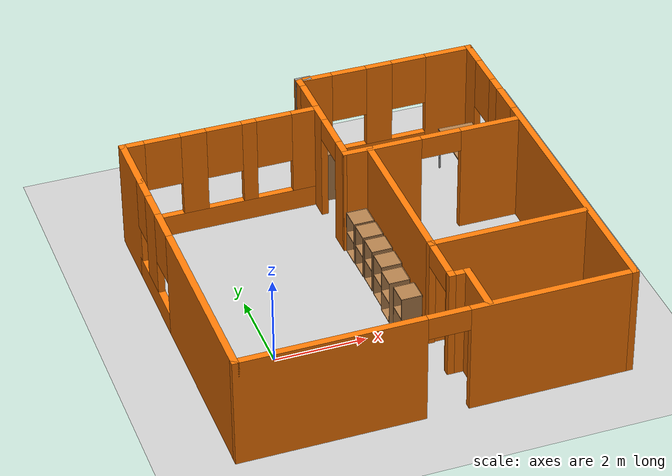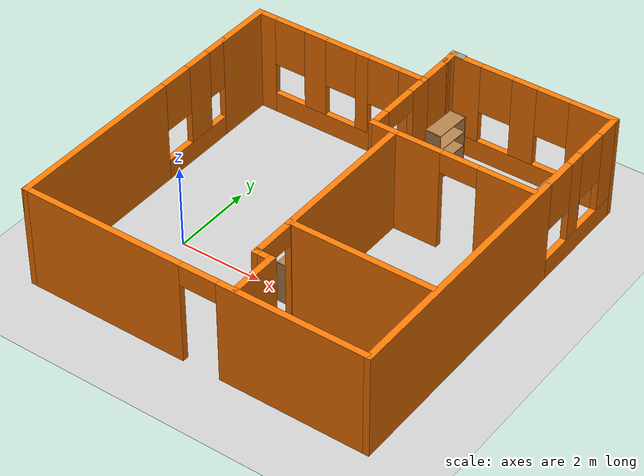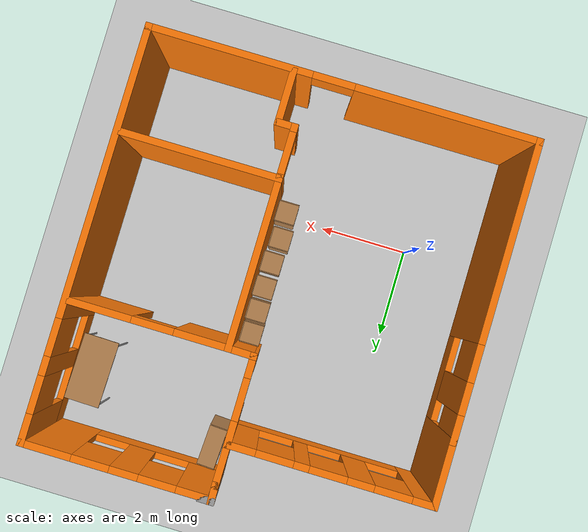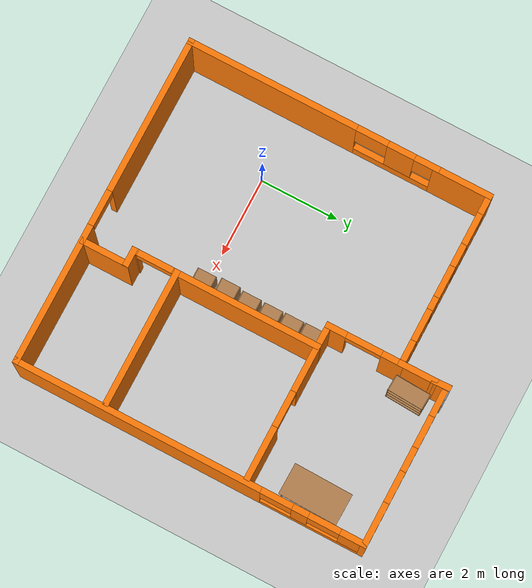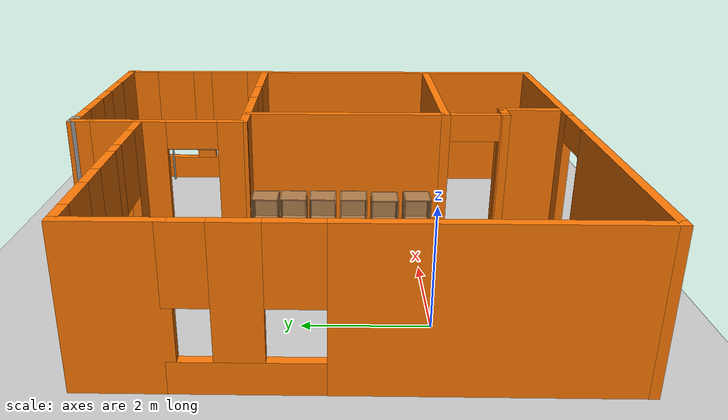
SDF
<sdf version="1.6">
 <world name="default">
  <plugin name="hello" filename="libWorldPluginProject_1.so"/>
  <light name="sun" type="directional">
   <pose>0 0 10 0 -0 0</pose>
   <diffuse>0.8 0.8 0.8 1</diffuse>
   <specular>0.2 0.2 0.2 1</specular>
   <attenuation>
    <range>1000</range>
    <constant>0.9</constant>
    <linear>0.01</linear>
    <quadratic>0.001</quadratic>
   </attenuation>
   <direction>-0.5 0.1 -0.9</direction>
  </light>
  <model name="ground_plane">
   <static>1</static>
   <link name="link">
    <collision name="collision">
     <geometry><plane><normal>0 0 1</normal><size>100 100</size></plane></geometry>
     <surface><friction><ode><mu>100</mu><mu2>50</mu2></ode></friction></surface>
    </collision>
    <visual name="visual">
     <cast_shadows>0</cast_shadows>
     <geometry><plane><normal>0 0 1</normal><size>100 100</size></plane></geometry>
     <material>
      <script><uri>file://media/materials/scripts/gazebo.material</uri><name>Gazebo/Grey</name></script>
     </material>
    </visual>
   </link>
  </model>
  <gravity>0 0 -9.8</gravity>
  <magnetic_field>6e-06 2.3e-05 -4.2e-05</magnetic_field>
  <atmosphere type="adiabatic"/>
  <physics name="default_physics" default="0" type="ode">
   <max_step_size>0.001</max_step_size>
   <real_time_factor>1</real_time_factor>
   <real_time_update_rate>1000</real_time_update_rate>
  </physics>
  <scene><ambient>0.4 0.4 0.4 1</ambient><background>0.7 0.7 0.7 1</background><shadows>1</shadows></scene>
  <spherical_coordinates>
   <surface_model>EARTH_WGS84</surface_model>
   <latitude_deg>0</latitude_deg>
   <longitude_deg>0</longitude_deg>
   <elevation>0</elevation>
   <heading_deg>0</heading_deg>
  </spherical_coordinates>
  <model name="MyHouse">
   <pose>2.505 1.70073 0 0 -0 0</pose>
   <link name="Wall_0">
    <pose>0 -4.44072 0 0 -0 0</pose>
    <visual name="Wall_0_Visual_0">
     <pose>-2.24582 0 1.25 0 -0 0</pose>
     <geometry><box><size>4.00836 0.15 2.5</size></box></geometry>
     <material>
      <script><uri>file://media/materials/scripts/gazebo.material</uri><name>Gazebo/Grey</name></script>
      <ambient>0.996078 0.47451 0.0196078 1</ambient>
     </material>
     <meta><layer>0</layer></meta>
    </visual>
    <collision name="Wall_0_Collision_0">
     <geometry><box><size>4.00836 0.15 2.5</size></box></geometry>
     <pose>-2.24582 0 1.25 0 -0 0</pose>
    </collision>
    <visual name="Wall_0_Visual_1">
     <pose>2.45418 0 1.25 0 -0 0</pose>
     <geometry><box><size>3.59164 0.15 2.5</size></box></geometry>
     <material>
      <script><uri>file://media/materials/scripts/gazebo.material</uri><name>Gazebo/Grey</name></script>
      <ambient>0.996078 0.47451 0.0196078 1</ambient>
     </material>
     <meta><layer>0</layer></meta>
    </visual>
    <collision name="Wall_0_Collision_1">
     <geometry><box><size>3.59164 0.15 2.5</size></box></geometry>
     <pose>2.45418 0 1.25 0 -0 0</pose>
    </collision>
    <visual name="Wall_0_Visual_2">
     <pose>0.208358 0 2.25 0 -0 0</pose>
     <geometry><box><size>0.9 0.15 0.5</size></box></geometry>
     <material>
      <script><uri>file://media/materials/scripts/gazebo.material</uri><name>Gazebo/Grey</name></script>
      <ambient>0.996078 0.47451 0.0196078 1</ambient>
     </material>
     <meta><layer>0</layer></meta>
    </visual>
    <collision name="Wall_0_Collision_2">
     <geometry><box><size>0.9 0.15 0.5</size></box></geometry>
     <pose>0.208358 0 2.25 0 -0 0</pose>
    </collision>
   </link>
   <link name="Wall_11">
    <pose>-4.175 -1.26572 0 0 -0 1.5708</pose>
    <visual name="Wall_11_Visual_0">
     <pose>-1.0588 0 1.25 0 -0 0</pose>
     <geometry><box><size>4.3824 0.15 2.5</size></box></geometry>
     <material>
      <script><uri>file://media/materials/scripts/gazebo.material</uri><name>Gazebo/Grey</name></script>
      <ambient>0.996078 0.47451 0.0196078 1</ambient>
     </material>
     <meta><layer>0</layer></meta>
    </visual>
    <collision name="Wall_11_Collision_0">
     <geometry><box><size>4.3824 0.15 2.5</size></box></geometry>
     <pose>-1.0588 0 1.25 0 -0 0</pose>
    </collision>
    <visual name="Wall_11_Visual_1">
     <pose>2.1912 0 0.25 0 -0 0</pose>
     <geometry><box><size>2.1176 0.15 0.5</size></box></geometry>
     <material>
      <script><uri>file://media/materials/scripts/gazebo.material</uri><name>Gazebo/Grey</name></script>
      <ambient>0.996078 0.47451 0.0196078 1</ambient>
     </material>
     <meta><layer>0</layer></meta>
    </visual>
    <collision name="Wall_11_Collision_1">
     <geometry><box><size>2.1176 0.15 0.5</size></box></geometry>
     <pose>2.1912 0 0.25 0 -0 0</pose>
    </collision>
    <visual name="Wall_11_Visual_2">
     <pose>2.2766 0 1.5 0 -0 0</pose>
     <geometry><box><size>0.688404 0.15 2</size></box></geometry>
     <material>
      <script><uri>file://media/materials/scripts/gazebo.material</uri><name>Gazebo/Grey</name></script>
      <ambient>0.996078 0.47451 0.0196078 1</ambient>
     </material>
     <meta><layer>0</layer></meta>
    </visual>
    <collision name="Wall_11_Collision_2">
     <geometry><box><size>0.688404 0.15 2</size></box></geometry>
     <pose>2.2766 0 1.5 0 -0 0</pose>
    </collision>
    <visual name="Wall_11_Visual_3">
     <pose>2.2766 0 1.5 0 -0 0</pose>
     <geometry><box><size>0.688404 0.15 2</size></box></geometry>
     <material>
      <script><uri>file://media/materials/scripts/gazebo.material</uri><name>Gazebo/Grey</name></script>
      <ambient>0.996078 0.47451 0.0196078 1</ambient>
     </material>
     <meta><layer>0</layer></meta>
    </visual>
    <collision name="Wall_11_Collision_3">
     <geometry><box><size>0.688404 0.15 2</size></box></geometry>
     <pose>2.2766 0 1.5 0 -0 0</pose>
    </collision>
    <visual name="Wall_11_Visual_4">
     <pose>1.5324 0 1.9 0 -0 0</pose>
     <geometry><box><size>0.8 0.15 1.2</size></box></geometry>
     <material>
      <script><uri>file://media/materials/scripts/gazebo.material</uri><name>Gazebo/Grey</name></script>
      <ambient>0.996078 0.47451 0.0196078 1</ambient>
     </material>
     <meta><layer>0</layer></meta>
    </visual>
    <collision name="Wall_11_Collision_4">
     <geometry><box><size>0.8 0.15 1.2</size></box></geometry>
     <pose>1.5324 0 1.9 0 -0 0</pose>
    </collision>
    <visual name="Wall_11_Visual_5">
     <pose>2.9354 0 1.9 0 -0 0</pose>
     <geometry><box><size>0.629193 0.15 1.2</size></box></geometry>
     <material>
      <script><uri>file://media/materials/scripts/gazebo.material</uri><name>Gazebo/Grey</name></script>
      <ambient>0.996078 0.47451 0.0196078 1</ambient>
     </material>
     <meta><layer>0</layer></meta>
    </visual>
    <collision name="Wall_11_Collision_5">
     <geometry><box><size>0.629193 0.15 1.2</size></box></geometry>
     <pose>2.9354 0 1.9 0 -0 0</pose>
    </collision>
    <visual name="Wall_11_Visual_6">
     <pose>2.9354 0 1.9 0 -0 0</pose>
     <geometry><box><size>0.629193 0.15 1.2</size></box></geometry>
     <material>
      <script><uri>file://media/materials/scripts/gazebo.material</uri><name>Gazebo/Grey</name></script>
      <ambient>0.996078 0.47451 0.0196078 1</ambient>
     </material>
     <meta><layer>0</layer></meta>
    </visual>
    <collision name="Wall_11_Collision_6">
     <geometry><box><size>0.629193 0.15 1.2</size></box></geometry>
     <pose>2.9354 0 1.9 0 -0 0</pose>
    </collision>
   </link>
   <link name="Wall_15">
    <collision name="Wall_15_Collision">
     <geometry><box><size>1.5 0.15 2.5</size></box></geometry>
     <pose>0 0 1.25 0 -0 0</pose>
    </collision>
    <visual name="Wall_15_Visual">
     <pose>0 0 1.25 0 -0 0</pose>
     <geometry><box><size>1.5 0.15 2.5</size></box></geometry>
     <material>
      <script><uri>file://media/materials/scripts/gazebo.material</uri><name>Gazebo/Grey</name></script>
      <ambient>0.996078 0.47451 0.0196078 1</ambient>
     </material>
     <meta><layer>0</layer></meta>
    </visual>
    <pose>-4.175 2.58427 0 0 -0 1.5708</pose>
   </link>
   <link name="Wall_16">
    <pose>-2 3.25928 0 0 -0 0</pose>
    <visual name="Wall_16_Visual_0">
     <pose>-1.98055 0 1.25 0 -0 0</pose>
     <geometry><box><size>0.538903 0.15 2.5</size></box></geometry>
     <material>
      <script><uri>file://media/materials/scripts/gazebo.material</uri><name>Gazebo/Grey</name></script>
      <ambient>0.996078 0.47451 0.0196078 1</ambient>
     </material>
     <meta><layer>0</layer></meta>
    </visual>
    <collision name="Wall_16_Collision_0">
     <geometry><box><size>0.538903 0.15 2.5</size></box></geometry>
     <pose>-1.98055 0 1.25 0 -0 0</pose>
    </collision>
    <visual name="Wall_16_Visual_1">
     <pose>0.269452 0 0.25 0 -0 0</pose>
     <geometry><box><size>3.9611 0.15 0.5</size></box></geometry>
     <material>
      <script><uri>file://media/materials/scripts/gazebo.material</uri><name>Gazebo/Grey</name></script>
      <ambient>0.996078 0.47451 0.0196078 1</ambient>
     </material>
     <meta><layer>0</layer></meta>
    </visual>
    <collision name="Wall_16_Collision_1">
     <geometry><box><size>3.9611 0.15 0.5</size></box></geometry>
     <pose>0.269452 0 0.25 0 -0 0</pose>
    </collision>
    <visual name="Wall_16_Visual_2">
     <pose>-0.627235 0 1.5 0 -0 0</pose>
     <geometry><box><size>0.567723 0.15 2</size></box></geometry>
     <material>
      <script><uri>file://media/materials/scripts/gazebo.material</uri><name>Gazebo/Grey</name></script>
      <ambient>0.996078 0.47451 0.0196078 1</ambient>
     </material>
     <meta><layer>0</layer></meta>
    </visual>
    <collision name="Wall_16_Collision_2">
     <geometry><box><size>0.567723 0.15 2</size></box></geometry>
     <pose>-0.627235 0 1.5 0 -0 0</pose>
    </collision>
    <visual name="Wall_16_Visual_3">
     <pose>0.619806 0 1.5 0 -0 0</pose>
     <geometry><box><size>0.32636 0.15 2</size></box></geometry>
     <material>
      <script><uri>file://media/materials/scripts/gazebo.material</uri><name>Gazebo/Grey</name></script>
      <ambient>0.996078 0.47451 0.0196078 1</ambient>
     </material>
     <meta><layer>0</layer></meta>
    </visual>
    <collision name="Wall_16_Collision_3">
     <geometry><box><size>0.32636 0.15 2</size></box></geometry>
     <pose>0.619806 0 1.5 0 -0 0</pose>
    </collision>
    <visual name="Wall_16_Visual_4">
     <pose>1.91649 0 1.5 0 -0 0</pose>
     <geometry><box><size>0.667014 0.15 2</size></box></geometry>
     <material>
      <script><uri>file://media/materials/scripts/gazebo.material</uri><name>Gazebo/Grey</name></script>
      <ambient>0.996078 0.47451 0.0196078 1</ambient>
     </material>
     <meta><layer>0</layer></meta>
    </visual>
    <collision name="Wall_16_Collision_4">
     <geometry><box><size>0.667014 0.15 2</size></box></geometry>
     <pose>1.91649 0 1.5 0 -0 0</pose>
    </collision>
    <visual name="Wall_16_Visual_5">
     <pose>-1.3111 0 1.9 0 -0 0</pose>
     <geometry><box><size>0.8 0.15 1.2</size></box></geometry>
     <material>
      <script><uri>file://media/materials/scripts/gazebo.material</uri><name>Gazebo/Grey</name></script>
      <ambient>0.996078 0.47451 0.0196078 1</ambient>
     </material>
     <meta><layer>0</layer></meta>
    </visual>
    <collision name="Wall_16_Collision_5">
     <geometry><box><size>0.8 0.15 1.2</size></box></geometry>
     <pose>-1.3111 0 1.9 0 -0 0</pose>
    </collision>
    <visual name="Wall_16_Visual_6">
     <pose>0.056626 0 1.9 0 -0 0</pose>
     <geometry><box><size>0.8 0.15 1.2</size></box></geometry>
     <material>
      <script><uri>file://media/materials/scripts/gazebo.material</uri><name>Gazebo/Grey</name></script>
      <ambient>0.996078 0.47451 0.0196078 1</ambient>
     </material>
     <meta><layer>0</layer></meta>
    </visual>
    <collision name="Wall_16_Collision_6">
     <geometry><box><size>0.8 0.15 1.2</size></box></geometry>
     <pose>0.056626 0 1.9 0 -0 0</pose>
    </collision>
    <visual name="Wall_16_Visual_7">
     <pose>1.18299 0 1.9 0 -0 0</pose>
     <geometry><box><size>0.8 0.15 1.2</size></box></geometry>
     <material>
      <script><uri>file://media/materials/scripts/gazebo.material</uri><name>Gazebo/Grey</name></script>
      <ambient>0.996078 0.47451 0.0196078 1</ambient>
     </material>
     <meta><layer>0</layer></meta>
    </visual>
    <collision name="Wall_16_Collision_7">
     <geometry><box><size>0.8 0.15 1.2</size></box></geometry>
     <pose>1.18299 0 1.9 0 -0 0</pose>
    </collision>
   </link>
   <link name="Wall_17">
    <collision name="Wall_17_Collision">
     <geometry><box><size>1 0.15 2.5</size></box></geometry>
     <pose>0 0 1.25 0 -0 0</pose>
    </collision>
    <visual name="Wall_17_Visual">
     <pose>0 0 1.25 0 -0 0</pose>
     <geometry><box><size>1 0.15 2.5</size></box></geometry>
     <material>
      <script><uri>file://media/materials/scripts/gazebo.material</uri><name>Gazebo/Grey</name></script>
      <ambient>0.996078 0.47451 0.0196078 1</ambient>
     </material>
     <meta><layer>0</layer></meta>
    </visual>
    <pose>0.175 3.68428 0 0 -0 1.5708</pose>
   </link>
   <link name="Wall_18">
    <collision name="Wall_18_Collision">
     <geometry><box><size>0.15 0.15 2.5</size></box></geometry>
     <pose>0 0 1.25 0 -0 0</pose>
    </collision>
    <visual name="Wall_18_Visual">
     <pose>0 0 1.25 0 -0 0</pose>
     <geometry><box><size>0.15 0.15 2.5</size></box></geometry>
     <material>
      <script><uri>file://media/materials/scripts/gazebo.material</uri><name>Gazebo/Grey</name></script>
      <ambient>0.996078 0.47451 0.0196078 1</ambient>
     </material>
     <meta><layer>0</layer></meta>
    </visual>
    <pose>0.175 4.10928 0 0 -0 0</pose>
   </link>
   <link name="Wall_19">
    <collision name="Wall_19_Collision">
     <geometry><box><size>0.47911 0.15 2.5</size></box></geometry>
     <pose>0 0 1.25 0 -0 0</pose>
    </collision>
    <visual name="Wall_19_Visual">
     <pose>0 0 1.25 0 -0 0</pose>
     <geometry><box><size>0.47911 0.15 2.5</size></box></geometry>
     <material>
      <script><uri>file://media/materials/scripts/gazebo.material</uri><name>Gazebo/Grey</name></script>
      <ambient>0.996078 0.47451 0.0196078 1</ambient>
     </material>
     <meta><layer>0</layer></meta>
    </visual>
    <pose>0.169343 4.27373 0 0 -0 1.60518</pose>
   </link>
   <link name="Wall_20">
    <collision name="Wall_20_Collision">
     <geometry><box><size>0.3616 0.15 2.5</size></box></geometry>
     <pose>0 0 1.25 0 -0 0</pose>
    </collision>
    <visual name="Wall_20_Visual">
     <pose>0 0 1.25 0 -0 0</pose>
     <geometry><box><size>0.3616 0.15 2.5</size></box></geometry>
     <material>
      <script><uri>file://media/materials/scripts/gazebo.material</uri><name>Gazebo/Grey</name></script>
      <ambient>1 1 1 1</ambient>
     </material>
     <meta><layer>0</layer></meta>
    </visual>
    <pose>0.269486 4.43819 0 0 -0 0</pose>
   </link>
   <link name="Wall_22">
    <collision name="Wall_22_Collision">
     <geometry><box><size>0.5 0.15 2.5</size></box></geometry>
     <pose>0 0 1.25 0 -0 0</pose>
    </collision>
    <visual name="Wall_22_Visual">
     <pose>0 0 1.25 0 -0 0</pose>
     <geometry><box><size>0.5 0.15 2.5</size></box></geometry>
     <material>
      <script><uri>file://media/materials/scripts/gazebo.material</uri><name>Gazebo/Grey</name></script>
      <ambient>0.996078 0.47451 0.0196078 1</ambient>
     </material>
     <meta><layer>0</layer></meta>
    </visual>
    <pose>0.886197 -3.29814 0 0 -0 0</pose>
   </link>
   <link name="Wall_23">
    <collision name="Wall_23_Collision">
     <geometry><box><size>1.25 0.15 2.5</size></box></geometry>
     <pose>0 0 1.25 0 -0 0</pose>
    </collision>
    <visual name="Wall_23_Visual">
     <pose>0 0 1.25 0 -0 0</pose>
     <geometry><box><size>1.25 0.15 2.5</size></box></geometry>
     <material>
      <script><uri>file://media/materials/scripts/gazebo.material</uri><name>Gazebo/Grey</name></script>
      <ambient>0.996078 0.47451 0.0196078 1</ambient>
     </material>
     <meta><layer>0</layer></meta>
    </visual>
    <pose>1.0612 -3.84815 0 0 0 -1.5708</pose>
   </link>
   <link name="Wall_27">
    <pose>0.711197 -2.74815 0 0 -0 1.5708</pose>
    <visual name="Wall_27_Visual_0">
     <pose>-0.535925 0 1.25 0 -0 0</pose>
     <geometry><box><size>0.17815 0.15 2.5</size></box></geometry>
     <material>
      <script><uri>file://media/materials/scripts/gazebo.material</uri><name>Gazebo/Grey</name></script>
      <ambient>0.996078 0.47451 0.0196078 1</ambient>
     </material>
     <meta><layer>0</layer></meta>
    </visual>
    <collision name="Wall_27_Collision_0">
     <geometry><box><size>0.17815 0.15 2.5</size></box></geometry>
     <pose>-0.535925 0 1.25 0 -0 0</pose>
    </collision>
    <visual name="Wall_27_Visual_1">
     <pose>0.539075 0 1.25 0 -0 0</pose>
     <geometry><box><size>0.17185 0.15 2.5</size></box></geometry>
     <material>
      <script><uri>file://media/materials/scripts/gazebo.material</uri><name>Gazebo/Grey</name></script>
      <ambient>0.996078 0.47451 0.0196078 1</ambient>
     </material>
     <meta><layer>0</layer></meta>
    </visual>
    <collision name="Wall_27_Collision_1">
     <geometry><box><size>0.17185 0.15 2.5</size></box></geometry>
     <pose>0.539075 0 1.25 0 -0 0</pose>
    </collision>
    <visual name="Wall_27_Visual_2">
     <pose>0.00315 0 2.25 0 -0 0</pose>
     <geometry><box><size>0.9 0.15 0.5</size></box></geometry>
     <material>
      <script><uri>file://media/materials/scripts/gazebo.material</uri><name>Gazebo/Grey</name></script>
      <ambient>0.996078 0.47451 0.0196078 1</ambient>
     </material>
     <meta><layer>0</layer></meta>
    </visual>
    <collision name="Wall_27_Collision_2">
     <geometry><box><size>0.9 0.15 0.5</size></box></geometry>
     <pose>0.00315 0 2.25 0 -0 0</pose>
    </collision>
   </link>
   <link name="Wall_28">
    <collision name="Wall_28_Collision">
     <geometry><box><size>3.5 0.15 2.5</size></box></geometry>
     <pose>0 0 1.25 0 -0 0</pose>
    </collision>
    <visual name="Wall_28_Visual">
     <pose>0 0 1.25 0 -0 0</pose>
     <geometry><box><size>3.5 0.15 2.5</size></box></geometry>
     <material>
      <script><uri>file://media/materials/scripts/gazebo.material</uri><name>Gazebo/Grey</name></script>
      <ambient>0.996078 0.47451 0.0196078 1</ambient>
     </material>
     <meta><layer>0</layer></meta>
    </visual>
    <pose>2.3862 -2.19814 0 0 -0 0</pose>
   </link>
   <link name="Wall_31">
    <collision name="Wall_31_Collision">
     <geometry><box><size>3.75 0.15 2.5</size></box></geometry>
     <pose>0 0 1.25 0 -0 0</pose>
    </collision>
    <visual name="Wall_31_Visual">
     <pose>0 0 1.25 0 -0 0</pose>
     <geometry><box><size>3.75 0.15 2.5</size></box></geometry>
     <material>
      <script><uri>file://media/materials/scripts/gazebo.material</uri><name>Gazebo/Grey</name></script>
      <ambient>0.996078 0.47451 0.0196078 1</ambient>
     </material>
     <meta><layer>0</layer></meta>
    </visual>
    <pose>0.711197 -0.398145 0 0 -0 1.5708</pose>
   </link>
   <link name="Wall_32">
    <pose>2.3862 1.40186 0 0 -0 0</pose>
    <visual name="Wall_32_Visual_0">
     <pose>-1.13275 0 1.25 0 -0 0</pose>
     <geometry><box><size>1.23451 0.15 2.5</size></box></geometry>
     <material>
      <script><uri>file://media/materials/scripts/gazebo.material</uri><name>Gazebo/Grey</name></script>
      <ambient>0.996078 0.47451 0.0196078 1</ambient>
     </material>
     <meta><layer>0</layer></meta>
    </visual>
    <collision name="Wall_32_Collision_0">
     <geometry><box><size>1.23451 0.15 2.5</size></box></geometry>
     <pose>-1.13275 0 1.25 0 -0 0</pose>
    </collision>
    <visual name="Wall_32_Visual_1">
     <pose>1.06725 0 1.25 0 -0 0</pose>
     <geometry><box><size>1.36549 0.15 2.5</size></box></geometry>
     <material>
      <script><uri>file://media/materials/scripts/gazebo.material</uri><name>Gazebo/Grey</name></script>
      <ambient>0.996078 0.47451 0.0196078 1</ambient>
     </material>
     <meta><layer>0</layer></meta>
    </visual>
    <collision name="Wall_32_Collision_1">
     <geometry><box><size>1.36549 0.15 2.5</size></box></geometry>
     <pose>1.06725 0 1.25 0 -0 0</pose>
    </collision>
    <visual name="Wall_32_Visual_2">
     <pose>-0.065494 0 2.25 0 -0 0</pose>
     <geometry><box><size>0.9 0.15 0.5</size></box></geometry>
     <material>
      <script><uri>file://media/materials/scripts/gazebo.material</uri><name>Gazebo/Grey</name></script>
      <ambient>0.996078 0.47451 0.0196078 1</ambient>
     </material>
     <meta><layer>0</layer></meta>
    </visual>
    <collision name="Wall_32_Collision_2">
     <geometry><box><size>0.9 0.15 0.5</size></box></geometry>
     <pose>-0.065494 0 2.25 0 -0 0</pose>
    </collision>
   </link>
   <link name="Wall_36">
    <pose>0.175 2.33427 0 0 0 -1.5708</pose>
    <visual name="Wall_36_Visual_0">
     <pose>-0.716994 0 1.25 0 -0 0</pose>
     <geometry><box><size>0.566013 0.15 2.5</size></box></geometry>
     <material>
      <script><uri>file://media/materials/scripts/gazebo.material</uri><name>Gazebo/Grey</name></script>
      <ambient>0.996078 0.47451 0.0196078 1</ambient>
     </material>
     <meta><layer>0</layer></meta>
    </visual>
    <collision name="Wall_36_Collision_0">
     <geometry><box><size>0.566013 0.15 2.5</size></box></geometry>
     <pose>-0.716994 0 1.25 0 -0 0</pose>
    </collision>
    <visual name="Wall_36_Visual_1">
     <pose>0.733006 0 1.25 0 -0 0</pose>
     <geometry><box><size>0.533987 0.15 2.5</size></box></geometry>
     <material>
      <script><uri>file://media/materials/scripts/gazebo.material</uri><name>Gazebo/Grey</name></script>
      <ambient>0.996078 0.47451 0.0196078 1</ambient>
     </material>
     <meta><layer>0</layer></meta>
    </visual>
    <collision name="Wall_36_Collision_1">
     <geometry><box><size>0.533987 0.15 2.5</size></box></geometry>
     <pose>0.733006 0 1.25 0 -0 0</pose>
    </collision>
    <visual name="Wall_36_Visual_2">
     <pose>0.016013 0 2.25 0 -0 0</pose>
     <geometry><box><size>0.9 0.15 0.5</size></box></geometry>
     <material>
      <script><uri>file://media/materials/scripts/gazebo.material</uri><name>Gazebo/Grey</name></script>
      <ambient>0.996078 0.47451 0.0196078 1</ambient>
     </material>
     <meta><layer>0</layer></meta>
    </visual>
    <collision name="Wall_36_Collision_2">
     <geometry><box><size>0.9 0.15 0.5</size></box></geometry>
     <pose>0.016013 0 2.25 0 -0 0</pose>
    </collision>
   </link>
   <link name="Wall_37">
    <collision name="Wall_37_Collision">
     <geometry><box><size>0.686249 0.15 2.5</size></box></geometry>
     <pose>0 0 1.25 0 -0 0</pose>
    </collision>
    <visual name="Wall_37_Visual">
     <pose>0 0 1.25 0 -0 0</pose>
     <geometry><box><size>0.686249 0.15 2.5</size></box></geometry>
     <material>
      <script><uri>file://media/materials/scripts/gazebo.material</uri><name>Gazebo/Grey</name></script>
      <ambient>0.996078 0.47451 0.0196078 1</ambient>
     </material>
     <meta><layer>0</layer></meta>
    </visual>
    <pose>0.443099 1.40556 0 0 0 -0.013838</pose>
   </link>
   <link name="Wall_5">
    <pose>4.175 -0.015725 0 0 -0 1.5708</pose>
    <visual name="Wall_5_Visual_0">
     <pose>-1.34335 0 1.25 0 -0 0</pose>
     <geometry><box><size>6.31331 0.15 2.5</size></box></geometry>
     <material>
      <script><uri>file://media/materials/scripts/gazebo.material</uri><name>Gazebo/Grey</name></script>
      <ambient>0.996078 0.47451 0.0196078 1</ambient>
     </material>
     <meta><layer>0</layer></meta>
    </visual>
    <collision name="Wall_5_Collision_0">
     <geometry><box><size>6.31331 0.15 2.5</size></box></geometry>
     <pose>-1.34335 0 1.25 0 -0 0</pose>
    </collision>
    <visual name="Wall_5_Visual_1">
     <pose>3.15665 0 0.25 0 -0 0</pose>
     <geometry><box><size>2.68669 0.15 0.5</size></box></geometry>
     <material>
      <script><uri>file://media/materials/scripts/gazebo.material</uri><name>Gazebo/Grey</name></script>
      <ambient>0.996078 0.47451 0.0196078 1</ambient>
     </material>
     <meta><layer>0</layer></meta>
    </visual>
    <collision name="Wall_5_Collision_1">
     <geometry><box><size>2.68669 0.15 0.5</size></box></geometry>
     <pose>3.15665 0 0.25 0 -0 0</pose>
    </collision>
    <visual name="Wall_5_Visual_2">
     <pose>2.81671 0 1.5 0 -0 0</pose>
     <geometry><box><size>0.406815 0.15 2</size></box></geometry>
     <material>
      <script><uri>file://media/materials/scripts/gazebo.material</uri><name>Gazebo/Grey</name></script>
      <ambient>0.996078 0.47451 0.0196078 1</ambient>
     </material>
     <meta><layer>0</layer></meta>
    </visual>
    <collision name="Wall_5_Collision_2">
     <geometry><box><size>0.406815 0.15 2</size></box></geometry>
     <pose>2.81671 0 1.5 0 -0 0</pose>
    </collision>
    <visual name="Wall_5_Visual_3">
     <pose>4.16006 0 1.5 0 -0 0</pose>
     <geometry><box><size>0.67988 0.15 2</size></box></geometry>
     <material>
      <script><uri>file://media/materials/scripts/gazebo.material</uri><name>Gazebo/Grey</name></script>
      <ambient>0.996078 0.47451 0.0196078 1</ambient>
     </material>
     <meta><layer>0</layer></meta>
    </visual>
    <collision name="Wall_5_Collision_3">
     <geometry><box><size>0.67988 0.15 2</size></box></geometry>
     <pose>4.16006 0 1.5 0 -0 0</pose>
    </collision>
    <visual name="Wall_5_Visual_4">
     <pose>2.21331 0 1.9 0 -0 0</pose>
     <geometry><box><size>0.8 0.15 1.2</size></box></geometry>
     <material>
      <script><uri>file://media/materials/scripts/gazebo.material</uri><name>Gazebo/Grey</name></script>
      <ambient>0.996078 0.47451 0.0196078 1</ambient>
     </material>
     <meta><layer>0</layer></meta>
    </visual>
    <collision name="Wall_5_Collision_4">
     <geometry><box><size>0.8 0.15 1.2</size></box></geometry>
     <pose>2.21331 0 1.9 0 -0 0</pose>
    </collision>
    <visual name="Wall_5_Visual_5">
     <pose>3.42012 0 1.9 0 -0 0</pose>
     <geometry><box><size>0.8 0.15 1.2</size></box></geometry>
     <material>
      <script><uri>file://media/materials/scripts/gazebo.material</uri><name>Gazebo/Grey</name></script>
      <ambient>0.996078 0.47451 0.0196078 1</ambient>
     </material>
     <meta><layer>0</layer></meta>
    </visual>
    <collision name="Wall_5_Collision_5">
     <geometry><box><size>0.8 0.15 1.2</size></box></geometry>
     <pose>3.42012 0 1.9 0 -0 0</pose>
    </collision>
   </link>
   <link name="Wall_7">
    <pose>2.25 4.40928 0 0 -0 3.14159</pose>
    <visual name="Wall_7_Visual_0">
     <pose>-1.43649 0 1.25 0 -0 0</pose>
     <geometry><box><size>1.12702 0.15 2.5</size></box></geometry>
     <material>
      <script><uri>file://media/materials/scripts/gazebo.material</uri><name>Gazebo/Grey</name></script>
      <ambient>0.996078 0.47451 0.0196078 1</ambient>
     </material>
     <meta><layer>0</layer></meta>
    </visual>
    <collision name="Wall_7_Collision_0">
     <geometry><box><size>1.12702 0.15 2.5</size></box></geometry>
     <pose>-1.43649 0 1.25 0 -0 0</pose>
    </collision>
    <visual name="Wall_7_Visual_1">
     <pose>0.563513 0 0.25 0 -0 0</pose>
     <geometry><box><size>2.87297 0.15 0.5</size></box></geometry>
     <material>
      <script><uri>file://media/materials/scripts/gazebo.material</uri><name>Gazebo/Grey</name></script>
      <ambient>0.996078 0.47451 0.0196078 1</ambient>
     </material>
     <meta><layer>0</layer></meta>
    </visual>
    <collision name="Wall_7_Collision_1">
     <geometry><box><size>2.87297 0.15 0.5</size></box></geometry>
     <pose>0.563513 0 0.25 0 -0 0</pose>
    </collision>
    <visual name="Wall_7_Visual_2">
     <pose>0.231 0 1.5 0 -0 0</pose>
     <geometry><box><size>0.60795 0.15 2</size></box></geometry>
     <material>
      <script><uri>file://media/materials/scripts/gazebo.material</uri><name>Gazebo/Grey</name></script>
      <ambient>0.996078 0.47451 0.0196078 1</ambient>
     </material>
     <meta><layer>0</layer></meta>
    </visual>
    <collision name="Wall_7_Collision_2">
     <geometry><box><size>0.60795 0.15 2</size></box></geometry>
     <pose>0.231 0 1.5 0 -0 0</pose>
    </collision>
    <visual name="Wall_7_Visual_3">
     <pose>1.66749 0 1.5 0 -0 0</pose>
     <geometry><box><size>0.665025 0.15 2</size></box></geometry>
     <material>
      <script><uri>file://media/materials/scripts/gazebo.material</uri><name>Gazebo/Grey</name></script>
      <ambient>0.996078 0.47451 0.0196078 1</ambient>
     </material>
     <meta><layer>0</layer></meta>
    </visual>
    <collision name="Wall_7_Collision_3">
     <geometry><box><size>0.665025 0.15 2</size></box></geometry>
     <pose>1.66749 0 1.5 0 -0 0</pose>
    </collision>
    <visual name="Wall_7_Visual_4">
     <pose>-0.472975 0 1.9 0 -0 0</pose>
     <geometry><box><size>0.8 0.15 1.2</size></box></geometry>
     <material>
      <script><uri>file://media/materials/scripts/gazebo.material</uri><name>Gazebo/Grey</name></script>
      <ambient>0.996078 0.47451 0.0196078 1</ambient>
     </material>
     <meta><layer>0</layer></meta>
    </visual>
    <collision name="Wall_7_Collision_4">
     <geometry><box><size>0.8 0.15 1.2</size></box></geometry>
     <pose>-0.472975 0 1.9 0 -0 0</pose>
    </collision>
    <visual name="Wall_7_Visual_5">
     <pose>0.934975 0 1.9 0 -0 0</pose>
     <geometry><box><size>0.8 0.15 1.2</size></box></geometry>
     <material>
      <script><uri>file://media/materials/scripts/gazebo.material</uri><name>Gazebo/Grey</name></script>
      <ambient>0.996078 0.47451 0.0196078 1</ambient>
     </material>
     <meta><layer>0</layer></meta>
    </visual>
    <collision name="Wall_7_Collision_5">
     <geometry><box><size>0.8 0.15 1.2</size></box></geometry>
     <pose>0.934975 0 1.9 0 -0 0</pose>
    </collision>
   </link>
   <static>1</static>
  </model>
  <model name="bookshelf">
   <static>1</static>
   <link name="link">
    <inertial><mass>1</mass></inertial>
    <collision name="back">
     <pose>0 0.005 0.6 0 -0 0</pose>
     <geometry><box><size>0.9 0.01 1.2</size></box></geometry>
    </collision>
    <visual name="visual1">
     <pose>0 0.005 0.6 0 -0 0</pose>
     <geometry><box><size>0.9 0.01 1.2</size></box></geometry>
     <material>
      <script><uri>file://media/materials/scripts/gazebo.material</uri><name>Gazebo/Wood</name></script>
     </material>
    </visual>
    <collision name="left_side">
     <pose>0.45 -0.195 0.6 0 -0 0</pose>
     <geometry><box><size>0.02 0.4 1.2</size></box></geometry>
    </collision>
    <visual name="visual2">
     <pose>0.45 -0.195 0.6 0 -0 0</pose>
     <geometry><box><size>0.02 0.4 1.2</size></box></geometry>
     <material>
      <script><uri>file://media/materials/scripts/gazebo.material</uri><name>Gazebo/Wood</name></script>
     </material>
    </visual>
    <collision name="right_side">
     <pose>-0.45 -0.195 0.6 0 -0 0</pose>
     <geometry><box><size>0.02 0.4 1.2</size></box></geometry>
    </collision>
    <visual name="visual3">
     <pose>-0.45 -0.195 0.6 0 -0 0</pose>
     <geometry><box><size>0.02 0.4 1.2</size></box></geometry>
     <material>
      <script><uri>file://media/materials/scripts/gazebo.material</uri><name>Gazebo/Wood</name></script>
     </material>
    </visual>
    <collision name="bottom">
     <pose>0 -0.195 0.03 0 -0 0</pose>
     <geometry><box><size>0.88 0.4 0.06</size></box></geometry>
    </collision>
    <visual name="visual4">
     <pose>0 -0.195 0.03 0 -0 0</pose>
     <geometry><box><size>0.88 0.4 0.06</size></box></geometry>
     <material>
      <script><uri>file://media/materials/scripts/gazebo.material</uri><name>Gazebo/Wood</name></script>
     </material>
    </visual>
    <collision name="top">
     <pose>0 -0.195 1.19 0 -0 0</pose>
     <geometry><box><size>0.88 0.4 0.02</size></box></geometry>
    </collision>
    <visual name="visual5">
     <pose>0 -0.195 1.19 0 -0 0</pose>
     <geometry><box><size>0.88 0.4 0.02</size></box></geometry>
     <material>
      <script><uri>file://media/materials/scripts/gazebo.material</uri><name>Gazebo/Wood</name></script>
     </material>
    </visual>
    <collision name="low_shelf">
     <pose>0 -0.195 0.43 0 -0 0</pose>
     <geometry><box><size>0.88 0.4 0.02</size></box></geometry>
    </collision>
    <visual name="visual6">
     <pose>0 -0.195 0.43 0 -0 0</pose>
     <geometry><box><size>0.88 0.4 0.02</size></box></geometry>
     <material>
      <script><uri>file://media/materials/scripts/gazebo.material</uri><name>Gazebo/Wood</name></script>
     </material>
    </visual>
    <collision name="high_shelf">
     <pose>0 -0.195 0.8 0 -0 0</pose>
     <geometry><box><size>0.88 0.4 0.02</size></box></geometry>
    </collision>
    <visual name="visual7">
     <pose>0 -0.195 0.8 0 -0 0</pose>
     <geometry><box><size>0.88 0.4 0.02</size></box></geometry>
     <material>
      <script><uri>file://media/materials/scripts/gazebo.material</uri><name>Gazebo/Wood</name></script>
     </material>
    </visual>
   </link>
   <pose>2.80597 5.40654 0 0 -0 1.51795</pose>
  </model>
  <model name="table">
   <static>1</static>
   <link name="link">
    <collision name="surface">
     <pose>0 0 1 0 -0 0</pose>
     <geometry><box><size>1.5 0.8 0.03</size></box></geometry>
     <surface><friction><ode><mu>0.6</mu><mu2>0.6</mu2></ode></friction></surface>
    </collision>
    <visual name="visual1">
     <pose>0 0 1 0 -0 0</pose>
     <geometry><box><size>1.5 0.8 0.03</size></box></geometry>
     <material>
      <script><uri>file://media/materials/scripts/gazebo.material</uri><name>Gazebo/Wood</name></script>
     </material>
    </visual>
    <collision name="front_left_leg">
     <pose>0.68 0.38 0.5 0 -0 0</pose>
     <geometry><cylinder><radius>0.02</radius><length>1</length></cylinder></geometry>
    </collision>
    <visual name="front_left_leg">
     <pose>0.68 0.38 0.5 0 -0 0</pose>
     <geometry><cylinder><radius>0.02</radius><length>1</length></cylinder></geometry>
     <material>
      <script><uri>file://media/materials/scripts/gazebo.material</uri><name>Gazebo/Grey</name></script>
     </material>
    </visual>
    <collision name="front_right_leg">
     <pose>0.68 -0.38 0.5 0 -0 0</pose>
     <geometry><cylinder><radius>0.02</radius><length>1</length></cylinder></geometry>
    </collision>
    <visual name="front_right_leg">
     <pose>0.68 -0.38 0.5 0 -0 0</pose>
     <geometry><cylinder><radius>0.02</radius><length>1</length></cylinder></geometry>
     <material>
      <script><uri>file://media/materials/scripts/gazebo.material</uri><name>Gazebo/Grey</name></script>
     </material>
    </visual>
    <collision name="back_right_leg">
     <pose>-0.68 -0.38 0.5 0 -0 0</pose>
     <geometry><cylinder><radius>0.02</radius><length>1</length></cylinder></geometry>
    </collision>
    <visual name="back_right_leg">
     <pose>-0.68 -0.38 0.5 0 -0 0</pose>
     <geometry><cylinder><radius>0.02</radius><length>1</length></cylinder></geometry>
     <material>
      <script><uri>file://media/materials/scripts/gazebo.material</uri><name>Gazebo/Grey</name></script>
     </material>
    </visual>
    <collision name="back_left_leg">
     <pose>-0.68 0.38 0.5 0 -0 0</pose>
     <geometry><cylinder><radius>0.02</radius><length>1</length></cylinder></geometry>
    </collision>
    <visual name="back_left_leg">
     <pose>-0.68 0.38 0.5 0 -0 0</pose>
     <geometry><cylinder><radius>0.02</radius><length>1</length></cylinder></geometry>
     <material>
      <script><uri>file://media/materials/scripts/gazebo.material</uri><name>Gazebo/Grey</name></script>
     </material>
    </visual>
   </link>
   <pose>6.06158 4.58337 0 0 0 -1.59076</pose>
  </model>
  <model name="cabinet">
   <static>1</static>
   <link name="cabinet_bottom_plate">
    <inertial>
     <pose>0 0 -1 0 -0 0</pose>
     <inertia><ixx>2.05</ixx><ixy>0</ixy><ixz>0</ixz><iyy>2.05</iyy><iyz>0</iyz><izz>2.05</izz></inertia>
     <mass>25</mass>
    </inertial>
    <collision name="cabinet_bottom_plate_geom">
     <pose>0 0 0.01 0 -0 0</pose>
     <geometry><box><size>0.45 0.45 0.02</size></box></geometry>
    </collision>
    <visual name="cabinet_bottom_plate_geom_visual">
     <pose>0 0 0.01 0 -0 0</pose>
     <geometry><box><size>0.45 0.45 0.02</size></box></geometry>
     <material>
      <script><uri>file://media/materials/scripts/gazebo.material</uri><name>Gazebo/Wood</name></script>
     </material>
    </visual>
    <collision name="cabinet_bottom_plate_geom_cabinet_back_plate">
     <pose>0.235 0 0.51 0 -0 0</pose>
     <geometry><box><size>0.02 0.45 1.02</size></box></geometry>
    </collision>
    <visual name="cabinet_bottom_plate_geom_cabinet_back_plate_visual">
     <pose>0.235 0 0.51 0 -0 0</pose>
     <geometry><box><size>0.02 0.45 1.02</size></box></geometry>
     <material>
      <script><uri>file://media/materials/scripts/gazebo.material</uri><name>Gazebo/Wood</name></script>
     </material>
    </visual>
    <collision name="cabinet_bottom_plate_geom_cabinet_left_plate">
     <pose>0 0.235 0.51 0 -0 0</pose>
     <geometry><box><size>0.45 0.02 1.02</size></box></geometry>
    </collision>
    <visual name="cabinet_bottom_plate_geom_cabinet_left_plate_visual">
     <pose>0 0.235 0.51 0 -0 0</pose>
     <geometry><box><size>0.45 0.02 1.02</size></box></geometry>
     <material>
      <script><uri>file://media/materials/scripts/gazebo.material</uri><name>Gazebo/Wood</name></script>
     </material>
    </visual>
    <collision name="cabinet_bottom_plate_geom_cabinet_middle_plate">
     <pose>0 0 0.51 0 -0 0</pose>
     <geometry><box><size>0.45 0.45 0.02</size></box></geometry>
    </collision>
    <visual name="cabinet_bottom_plate_geom_cabinet_middle_plate_visual">
     <pose>0 0 0.51 0 -0 0</pose>
     <geometry><box><size>0.45 0.45 0.02</size></box></geometry>
     <material>
      <script><uri>file://media/materials/scripts/gazebo.material</uri><name>Gazebo/Wood</name></script>
     </material>
    </visual>
    <collision name="cabinet_bottom_plate_geom_cabinet_right_plate">
     <pose>0 -0.235 0.51 0 -0 0</pose>
     <geometry><box><size>0.45 0.02 1.02</size></box></geometry>
    </collision>
    <visual name="cabinet_bottom_plate_geom_cabinet_right_plate_visual">
     <pose>0 -0.235 0.51 0 -0 0</pose>
     <geometry><box><size>0.45 0.02 1.02</size></box></geometry>
     <material>
      <script><uri>file://media/materials/scripts/gazebo.material</uri><name>Gazebo/Wood</name></script>
     </material>
    </visual>
    <collision name="cabinet_bottom_plate_geom_cabinet_top_plate">
     <pose>0 0 1.01 0 -0 0</pose>
     <geometry><box><size>0.45 0.45 0.02</size></box></geometry>
    </collision>
    <visual name="cabinet_bottom_plate_geom_cabinet_top_plate_visual">
     <pose>0 0 1.01 0 -0 0</pose>
     <geometry><box><size>0.45 0.45 0.02</size></box></geometry>
     <material>
      <script><uri>file://media/materials/scripts/gazebo.material</uri><name>Gazebo/Wood</name></script>
     </material>
    </visual>
   </link>
   <pose>2.88258 2.78182 0 0 -0 0</pose>
  </model>
  <model name="cabinet_0">
   <static>1</static>
   <link name="cabinet_bottom_plate">
    <inertial>
     <pose>0 0 -1 0 -0 0</pose>
     <inertia><ixx>2.05</ixx><ixy>0</ixy><ixz>0</ixz><iyy>2.05</iyy><iyz>0</iyz><izz>2.05</izz></inertia>
     <mass>25</mass>
    </inertial>
    <collision name="cabinet_bottom_plate_geom">
     <pose>0 0 0.01 0 -0 0</pose>
     <geometry><box><size>0.45 0.45 0.02</size></box></geometry>
    </collision>
    <visual name="cabinet_bottom_plate_geom_visual">
     <pose>0 0 0.01 0 -0 0</pose>
     <geometry><box><size>0.45 0.45 0.02</size></box></geometry>
     <material>
      <script><uri>file://media/materials/scripts/gazebo.material</uri><name>Gazebo/Wood</name></script>
     </material>
    </visual>
    <collision name="cabinet_bottom_plate_geom_cabinet_back_plate">
     <pose>0.235 0 0.51 0 -0 0</pose>
     <geometry><box><size>0.02 0.45 1.02</size></box></geometry>
    </collision>
    <visual name="cabinet_bottom_plate_geom_cabinet_back_plate_visual">
     <pose>0.235 0 0.51 0 -0 0</pose>
     <geometry><box><size>0.02 0.45 1.02</size></box></geometry>
     <material>
      <script><uri>file://media/materials/scripts/gazebo.material</uri><name>Gazebo/Wood</name></script>
     </material>
    </visual>
    <collision name="cabinet_bottom_plate_geom_cabinet_left_plate">
     <pose>0 0.235 0.51 0 -0 0</pose>
     <geometry><box><size>0.45 0.02 1.02</size></box></geometry>
    </collision>
    <visual name="cabinet_bottom_plate_geom_cabinet_left_plate_visual">
     <pose>0 0.235 0.51 0 -0 0</pose>
     <geometry><box><size>0.45 0.02 1.02</size></box></geometry>
     <material>
      <script><uri>file://media/materials/scripts/gazebo.material</uri><name>Gazebo/Wood</name></script>
     </material>
    </visual>
    <collision name="cabinet_bottom_plate_geom_cabinet_middle_plate">
     <pose>0 0 0.51 0 -0 0</pose>
     <geometry><box><size>0.45 0.45 0.02</size></box></geometry>
    </collision>
    <visual name="cabinet_bottom_plate_geom_cabinet_middle_plate_visual">
     <pose>0 0 0.51 0 -0 0</pose>
     <geometry><box><size>0.45 0.45 0.02</size></box></geometry>
     <material>
      <script><uri>file://media/materials/scripts/gazebo.material</uri><name>Gazebo/Wood</name></script>
     </material>
    </visual>
    <collision name="cabinet_bottom_plate_geom_cabinet_right_plate">
     <pose>0 -0.235 0.51 0 -0 0</pose>
     <geometry><box><size>0.45 0.02 1.02</size></box></geometry>
    </collision>
    <visual name="cabinet_bottom_plate_geom_cabinet_right_plate_visual">
     <pose>0 -0.235 0.51 0 -0 0</pose>
     <geometry><box><size>0.45 0.02 1.02</size></box></geometry>
     <material>
      <script><uri>file://media/materials/scripts/gazebo.material</uri><name>Gazebo/Wood</name></script>
     </material>
    </visual>
    <collision name="cabinet_bottom_plate_geom_cabinet_top_plate">
     <pose>0 0 1.01 0 -0 0</pose>
     <geometry><box><size>0.45 0.45 0.02</size></box></geometry>
    </collision>
    <visual name="cabinet_bottom_plate_geom_cabinet_top_plate_visual">
     <pose>0 0 1.01 0 -0 0</pose>
     <geometry><box><size>0.45 0.45 0.02</size></box></geometry>
     <material>
      <script><uri>file://media/materials/scripts/gazebo.material</uri><name>Gazebo/Wood</name></script>
     </material>
    </visual>
   </link>
   <pose>2.89372 2.26171 0 0 -0 0</pose>
  </model>
  <model name="cabinet_1">
   <static>1</static>
   <link name="cabinet_bottom_plate">
    <inertial>
     <pose>0 0 -1 0 -0 0</pose>
     <inertia><ixx>2.05</ixx><ixy>0</ixy><ixz>0</ixz><iyy>2.05</iyy><iyz>0</iyz><izz>2.05</izz></inertia>
     <mass>25</mass>
    </inertial>
    <collision name="cabinet_bottom_plate_geom">
     <pose>0 0 0.01 0 -0 0</pose>
     <geometry><box><size>0.45 0.45 0.02</size></box></geometry>
    </collision>
    <visual name="cabinet_bottom_plate_geom_visual">
     <pose>0 0 0.01 0 -0 0</pose>
     <geometry><box><size>0.45 0.45 0.02</size></box></geometry>
     <material>
      <script><uri>file://media/materials/scripts/gazebo.material</uri><name>Gazebo/Wood</name></script>
     </material>
    </visual>
    <collision name="cabinet_bottom_plate_geom_cabinet_back_plate">
     <pose>0.235 0 0.51 0 -0 0</pose>
     <geometry><box><size>0.02 0.45 1.02</size></box></geometry>
    </collision>
    <visual name="cabinet_bottom_plate_geom_cabinet_back_plate_visual">
     <pose>0.235 0 0.51 0 -0 0</pose>
     <geometry><box><size>0.02 0.45 1.02</size></box></geometry>
     <material>
      <script><uri>file://media/materials/scripts/gazebo.material</uri><name>Gazebo/Wood</name></script>
     </material>
    </visual>
    <collision name="cabinet_bottom_plate_geom_cabinet_left_plate">
     <pose>0 0.235 0.51 0 -0 0</pose>
     <geometry><box><size>0.45 0.02 1.02</size></box></geometry>
    </collision>
    <visual name="cabinet_bottom_plate_geom_cabinet_left_plate_visual">
     <pose>0 0.235 0.51 0 -0 0</pose>
     <geometry><box><size>0.45 0.02 1.02</size></box></geometry>
     <material>
      <script><uri>file://media/materials/scripts/gazebo.material</uri><name>Gazebo/Wood</name></script>
     </material>
    </visual>
    <collision name="cabinet_bottom_plate_geom_cabinet_middle_plate">
     <pose>0 0 0.51 0 -0 0</pose>
     <geometry><box><size>0.45 0.45 0.02</size></box></geometry>
    </collision>
    <visual name="cabinet_bottom_plate_geom_cabinet_middle_plate_visual">
     <pose>0 0 0.51 0 -0 0</pose>
     <geometry><box><size>0.45 0.45 0.02</size></box></geometry>
     <material>
      <script><uri>file://media/materials/scripts/gazebo.material</uri><name>Gazebo/Wood</name></script>
     </material>
    </visual>
    <collision name="cabinet_bottom_plate_geom_cabinet_right_plate">
     <pose>0 -0.235 0.51 0 -0 0</pose>
     <geometry><box><size>0.45 0.02 1.02</size></box></geometry>
    </collision>
    <visual name="cabinet_bottom_plate_geom_cabinet_right_plate_visual">
     <pose>0 -0.235 0.51 0 -0 0</pose>
     <geometry><box><size>0.45 0.02 1.02</size></box></geometry>
     <material>
      <script><uri>file://media/materials/scripts/gazebo.material</uri><name>Gazebo/Wood</name></script>
     </material>
    </visual>
    <collision name="cabinet_bottom_plate_geom_cabinet_top_plate">
     <pose>0 0 1.01 0 -0 0</pose>
     <geometry><box><size>0.45 0.45 0.02</size></box></geometry>
    </collision>
    <visual name="cabinet_bottom_plate_geom_cabinet_top_plate_visual">
     <pose>0 0 1.01 0 -0 0</pose>
     <geometry><box><size>0.45 0.45 0.02</size></box></geometry>
     <material>
      <script><uri>file://media/materials/scripts/gazebo.material</uri><name>Gazebo/Wood</name></script>
     </material>
    </visual>
   </link>
   <pose>2.90253 1.72237 0 0 -0 0</pose>
  </model>
  <model name="cabinet_2">
   <static>1</static>
   <link name="cabinet_bottom_plate">
    <inertial>
     <pose>0 0 -1 0 -0 0</pose>
     <inertia><ixx>2.05</ixx><ixy>0</ixy><ixz>0</ixz><iyy>2.05</iyy><iyz>0</iyz><izz>2.05</izz></inertia>
     <mass>25</mass>
    </inertial>
    <collision name="cabinet_bottom_plate_geom">
     <pose>0 0 0.01 0 -0 0</pose>
     <geometry><box><size>0.45 0.45 0.02</size></box></geometry>
    </collision>
    <visual name="cabinet_bottom_plate_geom_visual">
     <pose>0 0 0.01 0 -0 0</pose>
     <geometry><box><size>0.45 0.45 0.02</size></box></geometry>
     <material>
      <script><uri>file://media/materials/scripts/gazebo.material</uri><name>Gazebo/Wood</name></script>
     </material>
    </visual>
    <collision name="cabinet_bottom_plate_geom_cabinet_back_plate">
     <pose>0.235 0 0.51 0 -0 0</pose>
     <geometry><box><size>0.02 0.45 1.02</size></box></geometry>
    </collision>
    <visual name="cabinet_bottom_plate_geom_cabinet_back_plate_visual">
     <pose>0.235 0 0.51 0 -0 0</pose>
     <geometry><box><size>0.02 0.45 1.02</size></box></geometry>
     <material>
      <script><uri>file://media/materials/scripts/gazebo.material</uri><name>Gazebo/Wood</name></script>
     </material>
    </visual>
    <collision name="cabinet_bottom_plate_geom_cabinet_left_plate">
     <pose>0 0.235 0.51 0 -0 0</pose>
     <geometry><box><size>0.45 0.02 1.02</size></box></geometry>
    </collision>
    <visual name="cabinet_bottom_plate_geom_cabinet_left_plate_visual">
     <pose>0 0.235 0.51 0 -0 0</pose>
     <geometry><box><size>0.45 0.02 1.02</size></box></geometry>
     <material>
      <script><uri>file://media/materials/scripts/gazebo.material</uri><name>Gazebo/Wood</name></script>
     </material>
    </visual>
    <collision name="cabinet_bottom_plate_geom_cabinet_middle_plate">
     <pose>0 0 0.51 0 -0 0</pose>
     <geometry><box><size>0.45 0.45 0.02</size></box></geometry>
    </collision>
    <visual name="cabinet_bottom_plate_geom_cabinet_middle_plate_visual">
     <pose>0 0 0.51 0 -0 0</pose>
     <geometry><box><size>0.45 0.45 0.02</size></box></geometry>
     <material>
      <script><uri>file://media/materials/scripts/gazebo.material</uri><name>Gazebo/Wood</name></script>
     </material>
    </visual>
    <collision name="cabinet_bottom_plate_geom_cabinet_right_plate">
     <pose>0 -0.235 0.51 0 -0 0</pose>
     <geometry><box><size>0.45 0.02 1.02</size></box></geometry>
    </collision>
    <visual name="cabinet_bottom_plate_geom_cabinet_right_plate_visual">
     <pose>0 -0.235 0.51 0 -0 0</pose>
     <geometry><box><size>0.45 0.02 1.02</size></box></geometry>
     <material>
      <script><uri>file://media/materials/scripts/gazebo.material</uri><name>Gazebo/Wood</name></script>
     </material>
    </visual>
    <collision name="cabinet_bottom_plate_geom_cabinet_top_plate">
     <pose>0 0 1.01 0 -0 0</pose>
     <geometry><box><size>0.45 0.45 0.02</size></box></geometry>
    </collision>
    <visual name="cabinet_bottom_plate_geom_cabinet_top_plate_visual">
     <pose>0 0 1.01 0 -0 0</pose>
     <geometry><box><size>0.45 0.45 0.02</size></box></geometry>
     <material>
      <script><uri>file://media/materials/scripts/gazebo.material</uri><name>Gazebo/Wood</name></script>
     </material>
    </visual>
   </link>
   <pose>2.89846 1.15171 0 0 -0 0</pose>
  </model>
  <model name="cabinet_3">
   <static>1</static>
   <link name="cabinet_bottom_plate">
    <inertial>
     <pose>0 0 -1 0 -0 0</pose>
     <inertia><ixx>2.05</ixx><ixy>0</ixy><ixz>0</ixz><iyy>2.05</iyy><iyz>0</iyz><izz>2.05</izz></inertia>
     <mass>25</mass>
    </inertial>
    <collision name="cabinet_bottom_plate_geom">
     <pose>0 0 0.01 0 -0 0</pose>
     <geometry><box><size>0.45 0.45 0.02</size></box></geometry>
    </collision>
    <visual name="cabinet_bottom_plate_geom_visual">
     <pose>0 0 0.01 0 -0 0</pose>
     <geometry><box><size>0.45 0.45 0.02</size></box></geometry>
     <material>
      <script><uri>file://media/materials/scripts/gazebo.material</uri><name>Gazebo/Wood</name></script>
     </material>
    </visual>
    <collision name="cabinet_bottom_plate_geom_cabinet_back_plate">
     <pose>0.235 0 0.51 0 -0 0</pose>
     <geometry><box><size>0.02 0.45 1.02</size></box></geometry>
    </collision>
    <visual name="cabinet_bottom_plate_geom_cabinet_back_plate_visual">
     <pose>0.235 0 0.51 0 -0 0</pose>
     <geometry><box><size>0.02 0.45 1.02</size></box></geometry>
     <material>
      <script><uri>file://media/materials/scripts/gazebo.material</uri><name>Gazebo/Wood</name></script>
     </material>
    </visual>
    <collision name="cabinet_bottom_plate_geom_cabinet_left_plate">
     <pose>0 0.235 0.51 0 -0 0</pose>
     <geometry><box><size>0.45 0.02 1.02</size></box></geometry>
    </collision>
    <visual name="cabinet_bottom_plate_geom_cabinet_left_plate_visual">
     <pose>0 0.235 0.51 0 -0 0</pose>
     <geometry><box><size>0.45 0.02 1.02</size></box></geometry>
     <material>
      <script><uri>file://media/materials/scripts/gazebo.material</uri><name>Gazebo/Wood</name></script>
     </material>
    </visual>
    <collision name="cabinet_bottom_plate_geom_cabinet_middle_plate">
     <pose>0 0 0.51 0 -0 0</pose>
     <geometry><box><size>0.45 0.45 0.02</size></box></geometry>
    </collision>
    <visual name="cabinet_bottom_plate_geom_cabinet_middle_plate_visual">
     <pose>0 0 0.51 0 -0 0</pose>
     <geometry><box><size>0.45 0.45 0.02</size></box></geometry>
     <material>
      <script><uri>file://media/materials/scripts/gazebo.material</uri><name>Gazebo/Wood</name></script>
     </material>
    </visual>
    <collision name="cabinet_bottom_plate_geom_cabinet_right_plate">
     <pose>0 -0.235 0.51 0 -0 0</pose>
     <geometry><box><size>0.45 0.02 1.02</size></box></geometry>
    </collision>
    <visual name="cabinet_bottom_plate_geom_cabinet_right_plate_visual">
     <pose>0 -0.235 0.51 0 -0 0</pose>
     <geometry><box><size>0.45 0.02 1.02</size></box></geometry>
     <material>
      <script><uri>file://media/materials/scripts/gazebo.material</uri><name>Gazebo/Wood</name></script>
     </material>
    </visual>
    <collision name="cabinet_bottom_plate_geom_cabinet_top_plate">
     <pose>0 0 1.01 0 -0 0</pose>
     <geometry><box><size>0.45 0.45 0.02</size></box></geometry>
    </collision>
    <visual name="cabinet_bottom_plate_geom_cabinet_top_plate_visual">
     <pose>0 0 1.01 0 -0 0</pose>
     <geometry><box><size>0.45 0.45 0.02</size></box></geometry>
     <material>
      <script><uri>file://media/materials/scripts/gazebo.material</uri><name>Gazebo/Wood</name></script>
     </material>
    </visual>
   </link>
   <pose>2.85874 0.57761 0 0 -0 0</pose>
  </model>
  <model name="cabinet_4">
   <static>1</static>
   <link name="cabinet_bottom_plate">
    <inertial>
     <pose>0 0 -1 0 -0 0</pose>
     <inertia><ixx>2.05</ixx><ixy>0</ixy><ixz>0</ixz><iyy>2.05</iyy><iyz>0</iyz><izz>2.05</izz></inertia>
     <mass>25</mass>
    </inertial>
    <collision name="cabinet_bottom_plate_geom">
     <pose>0 0 0.01 0 -0 0</pose>
     <geometry><box><size>0.45 0.45 0.02</size></box></geometry>
    </collision>
    <visual name="cabinet_bottom_plate_geom_visual">
     <pose>0 0 0.01 0 -0 0</pose>
     <geometry><box><size>0.45 0.45 0.02</size></box></geometry>
     <material>
      <script><uri>file://media/materials/scripts/gazebo.material</uri><name>Gazebo/Wood</name></script>
     </material>
    </visual>
    <collision name="cabinet_bottom_plate_geom_cabinet_back_plate">
     <pose>0.235 0 0.51 0 -0 0</pose>
     <geometry><box><size>0.02 0.45 1.02</size></box></geometry>
    </collision>
    <visual name="cabinet_bottom_plate_geom_cabinet_back_plate_visual">
     <pose>0.235 0 0.51 0 -0 0</pose>
     <geometry><box><size>0.02 0.45 1.02</size></box></geometry>
     <material>
      <script><uri>file://media/materials/scripts/gazebo.material</uri><name>Gazebo/Wood</name></script>
     </material>
    </visual>
    <collision name="cabinet_bottom_plate_geom_cabinet_left_plate">
     <pose>0 0.235 0.51 0 -0 0</pose>
     <geometry><box><size>0.45 0.02 1.02</size></box></geometry>
    </collision>
    <visual name="cabinet_bottom_plate_geom_cabinet_left_plate_visual">
     <pose>0 0.235 0.51 0 -0 0</pose>
     <geometry><box><size>0.45 0.02 1.02</size></box></geometry>
     <material>
      <script><uri>file://media/materials/scripts/gazebo.material</uri><name>Gazebo/Wood</name></script>
     </material>
    </visual>
    <collision name="cabinet_bottom_plate_geom_cabinet_middle_plate">
     <pose>0 0 0.51 0 -0 0</pose>
     <geometry><box><size>0.45 0.45 0.02</size></box></geometry>
    </collision>
    <visual name="cabinet_bottom_plate_geom_cabinet_middle_plate_visual">
     <pose>0 0 0.51 0 -0 0</pose>
     <geometry><box><size>0.45 0.45 0.02</size></box></geometry>
     <material>
      <script><uri>file://media/materials/scripts/gazebo.material</uri><name>Gazebo/Wood</name></script>
     </material>
    </visual>
    <collision name="cabinet_bottom_plate_geom_cabinet_right_plate">
     <pose>0 -0.235 0.51 0 -0 0</pose>
     <geometry><box><size>0.45 0.02 1.02</size></box></geometry>
    </collision>
    <visual name="cabinet_bottom_plate_geom_cabinet_right_plate_visual">
     <pose>0 -0.235 0.51 0 -0 0</pose>
     <geometry><box><size>0.45 0.02 1.02</size></box></geometry>
     <material>
      <script><uri>file://media/materials/scripts/gazebo.material</uri><name>Gazebo/Wood</name></script>
     </material>
    </visual>
    <collision name="cabinet_bottom_plate_geom_cabinet_top_plate">
     <pose>0 0 1.01 0 -0 0</pose>
     <geometry><box><size>0.45 0.45 0.02</size></box></geometry>
    </collision>
    <visual name="cabinet_bottom_plate_geom_cabinet_top_plate_visual">
     <pose>0 0 1.01 0 -0 0</pose>
     <geometry><box><size>0.45 0.45 0.02</size></box></geometry>
     <material>
      <script><uri>file://media/materials/scripts/gazebo.material</uri><name>Gazebo/Wood</name></script>
     </material>
    </visual>
   </link>
   <pose>2.90255 -0.020429 0 0 -0 0</pose>
  </model>
 </world>
</sdf>
